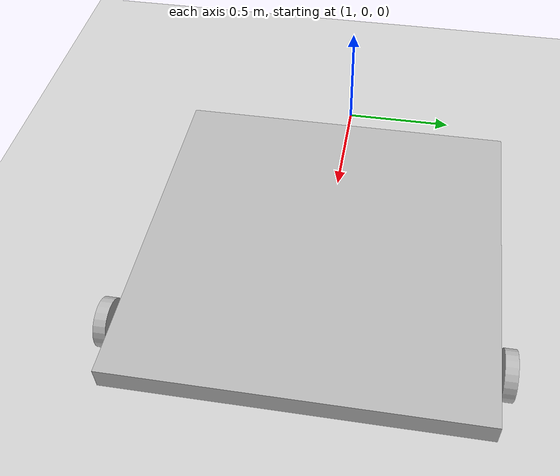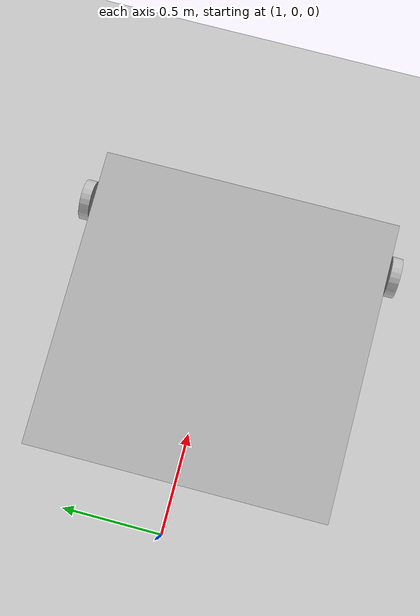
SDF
<?xml version="1.0" encoding="UTF-8"?>
<sdf version="1.9">
  <world name="platform">
    <physics type="ode">
      <max_step_size>0.004</max_step_size>
      <real_time_factor>1.0</real_time_factor>
      <real_time_update_rate>250</real_time_update_rate>
    </physics>
    <plugin name="gz::sim::systems::Physics" filename="gz-sim-physics-system"/>
    <plugin name="gz::sim::systems::UserCommands" filename="gz-sim-user-commands-system"/>
    <plugin name="gz::sim::systems::SceneBroadcaster" filename="gz-sim-scene-broadcaster-system"/>
    <plugin name="gz::sim::systems::Contact" filename="gz-sim-contact-system"/>
    <plugin name="gz::sim::systems::Imu" filename="gz-sim-imu-system"/>
    <plugin name="gz::sim::systems::AirPressure" filename="gz-sim-air-pressure-system"/>
    <plugin name="gz::sim::systems::AirSpeed" filename="gz-sim-air-speed-system"/>
    <plugin name="gz::sim::systems::ApplyLinkWrench" filename="gz-sim-apply-link-wrench-system"/>
    <plugin name="gz::sim::systems::NavSat" filename="gz-sim-navsat-system"/>
    <plugin name="gz::sim::systems::Sensors" filename="gz-sim-sensors-system">
      <render_engine>ogre2</render_engine>
    </plugin>
    <gui fullscreen="false">
      <!-- 3D scene -->
      <plugin filename="MinimalScene" name="3D View">
        <gz-gui>
          <title>3D View</title>
          <property type="bool" key="showTitleBar">false</property>
          <property type="string" key="state">docked</property>
        </gz-gui>
        <engine>ogre2</engine>
        <scene>scene</scene>
        <ambient_light>0.4 0.4 0.4</ambient_light>
        <background_color>0.8 0.8 0.8</background_color>
        <camera_pose>-6 0 6 0 0.5 0</camera_pose>
        <camera_clip>
          <near>0.25</near>
          <far>25000</far>
        </camera_clip>
      </plugin>
      <!-- Plugins that add functionality to the scene -->
      <plugin filename="EntityContextMenuPlugin" name="Entity context menu">
        <gz-gui>
          <property key="state" type="string">floating</property>
          <property key="width" type="double">5</property>
          <property key="height" type="double">5</property>
          <property key="showTitleBar" type="bool">false</property>
        </gz-gui>
      </plugin>
      <plugin filename="GzSceneManager" name="Scene Manager">
        <gz-gui>
          <property key="resizable" type="bool">false</property>
          <property key="width" type="double">5</property>
          <property key="height" type="double">5</property>
          <property key="state" type="string">floating</property>
          <property key="showTitleBar" type="bool">false</property>
        </gz-gui>
      </plugin>
      <plugin filename="InteractiveViewControl" name="Interactive view control">
        <gz-gui>
          <property key="resizable" type="bool">false</property>
          <property key="width" type="double">5</property>
          <property key="height" type="double">5</property>
          <property key="state" type="string">floating</property>
          <property key="showTitleBar" type="bool">false</property>
        </gz-gui>
      </plugin>
      <plugin filename="CameraTracking" name="Camera Tracking">
        <gz-gui>
          <property key="resizable" type="bool">false</property>
          <property key="width" type="double">5</property>
          <property key="height" type="double">5</property>
          <property key="state" type="string">floating</property>
          <property key="showTitleBar" type="bool">false</property>
        </gz-gui>
      </plugin>
      <plugin filename="MarkerManager" name="Marker manager">
        <gz-gui>
          <property key="resizable" type="bool">false</property>
          <property key="width" type="double">5</property>
          <property key="height" type="double">5</property>
          <property key="state" type="string">floating</property>
          <property key="showTitleBar" type="bool">false</property>
        </gz-gui>
      </plugin>
      <plugin filename="SelectEntities" name="Select Entities">
        <gz-gui>
          <anchors target="Select entities">
            <line own="right" target="right"/>
            <line own="top" target="top"/>
          </anchors>
          <property key="resizable" type="bool">false</property>
          <property key="width" type="double">5</property>
          <property key="height" type="double">5</property>
          <property key="state" type="string">floating</property>
          <property key="showTitleBar" type="bool">false</property>
        </gz-gui>
      </plugin>
      <plugin filename="VisualizationCapabilities" name="Visualization Capabilities">
        <gz-gui>
          <property key="resizable" type="bool">false</property>
          <property key="width" type="double">5</property>
          <property key="height" type="double">5</property>
          <property key="state" type="string">floating</property>
          <property key="showTitleBar" type="bool">false</property>
        </gz-gui>
      </plugin>
      <plugin filename="Spawn" name="Spawn Entities">
        <gz-gui>
          <anchors target="Select entities">
            <line own="right" target="right"/>
            <line own="top" target="top"/>
          </anchors>
          <property key="resizable" type="bool">false</property>
          <property key="width" type="double">5</property>
          <property key="height" type="double">5</property>
          <property key="state" type="string">floating</property>
          <property key="showTitleBar" type="bool">false</property>
        </gz-gui>
      </plugin>
      <plugin name="World control" filename="WorldControl">
        <gz-gui>
          <title>World control</title>
          <property type="bool" key="showTitleBar">0</property>
          <property type="bool" key="resizable">0</property>
          <property type="double" key="height">72</property>
          <property type="double" key="width">121</property>
          <property type="double" key="z">1</property>
          <property type="string" key="state">floating</property>
          <anchors target="3D View">
            <line own="left" target="left"/>
            <line own="bottom" target="bottom"/>
          </anchors>
        </gz-gui>
        <play_pause>1</play_pause>
        <step>1</step>
        <start_paused>1</start_paused>
      </plugin>
      <plugin name="World stats" filename="WorldStats">
        <gz-gui>
          <title>World stats</title>
          <property type="bool" key="showTitleBar">0</property>
          <property type="bool" key="resizable">0</property>
          <property type="double" key="height">110</property>
          <property type="double" key="width">290</property>
          <property type="double" key="z">1</property>
          <property type="string" key="state">floating</property>
          <anchors target="3D View">
            <line own="right" target="right"/>
            <line own="bottom" target="bottom"/>
          </anchors>
        </gz-gui>
        <sim_time>1</sim_time>
        <real_time>1</real_time>
        <real_time_factor>1</real_time_factor>
        <iterations>1</iterations>
      </plugin>
      <plugin name="Entity tree" filename="EntityTree"/>
    </gui>
    <gravity>0 0 -9.8</gravity>
    <magnetic_field>6e-06 2.3e-05 -4.2e-05</magnetic_field>
    <atmosphere type="adiabatic"/>
    <scene>
      <grid>false</grid>
      <ambient>0.4 0.4 0.4 1</ambient>
      <background>0.7 0.7 0.7 1</background>
      <shadows>true</shadows>
    </scene>
    <model name="ground_plane">
      <static>true</static>
      <link name="link">
        <collision name="collision">
          <geometry>
            <plane>
              <normal>0 0 1</normal>
              <size>1 1</size>
            </plane>
          </geometry>
          <surface>
            <friction>
              <ode/>
            </friction>
            <bounce/>
            <contact/>
          </surface>
        </collision>
        <visual name="visual">
          <geometry>
            <plane>
              <normal>0 0 1</normal>
              <size>100 100</size>
            </plane>
          </geometry>
          <material>
            <ambient>0.8 0.8 0.8 1</ambient>
            <diffuse>0.8 0.8 0.8 1</diffuse>
            <specular>0.8 0.8 0.8 1</specular>
          </material>
        </visual>
        <pose>0 0 0 0 -0 0</pose>
        <inertial>
          <pose>0 0 0 0 -0 0</pose>
          <mass>1</mass>
          <inertia>
            <ixx>1</ixx>
            <ixy>0</ixy>
            <ixz>0</ixz>
            <iyy>1</iyy>
            <iyz>0</iyz>
            <izz>1</izz>
          </inertia>
        </inertial>
        <enable_wind>false</enable_wind>
      </link>
      <pose>0 0 0 0 -0 0</pose>
      <self_collide>false</self_collide>
    </model>
    <light name="sunUTC" type="directional">
      <pose>0 0 500 0 -0 0</pose>
      <cast_shadows>true</cast_shadows>
      <intensity>1</intensity>
      <direction>0.001 0.625 -0.78</direction>
      <diffuse>0.904 0.904 0.904 1</diffuse>
      <specular>0.271 0.271 0.271 1</specular>
      <attenuation>
        <range>2000</range>
        <linear>0</linear>
        <constant>1</constant>
        <quadratic>0</quadratic>
      </attenuation>
      <spot>
        <inner_angle>0</inner_angle>
        <outer_angle>0</outer_angle>
        <falloff>0</falloff>
      </spot>
    </light>
    <spherical_coordinates>
      <surface_model>EARTH_WGS84</surface_model>
      <world_frame_orientation>ENU</world_frame_orientation>
      <latitude_deg>47.397971057728974</latitude_deg>
      <longitude_deg> 8.546163739800146</longitude_deg>
      <elevation>0</elevation>
    </spherical_coordinates>

    <include>
      <uri>model://landing_platform</uri>
    </include>
  </world>
</sdf>

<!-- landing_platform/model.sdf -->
<sdf version='1.9'>
  <model name="landing_platform">
    <static>false</static>
    <link name="base_link">
      <pose>2 0 0.1 0 0 0</pose>
      <collision name="collision">
        <geometry>
          <box>
            <size>1.5 1.5 0.1</size>
          </box>
        </geometry>
      </collision>
      <visual name="visual">
        <geometry>
          <box>
            <size>1.5 1.5 0.1</size>
          </box>
        </geometry>
        <material>
          <ambient>0.7 0.7 0.7 1</ambient>
          <diffuse>0.7 0.7 0.7 1</diffuse>
        </material>
      </visual>
      <inertial>
        <mass>10</mass>
        <inertia>
          <ixx>1.0</ixx>
          <iyy>1.0</iyy>
          <izz>1.0</izz>
          <ixy>0.0</ixy>
          <ixz>0.0</ixz>
          <iyz>0.0</iyz>
        </inertia>
      </inertial>

      <collision name='caster_collision'>
        <pose>-0.5 0 -0.05 0 0 0</pose>
        <geometry>
            <sphere>
            <radius>.05</radius>
          </sphere>
        </geometry>
        <surface>
          <friction>
            <ode>
              <mu>0</mu>
              <mu2>0</mu2>
              <slip1>1.0</slip1>
              <slip2>1.0</slip2>
            </ode>
          </friction>
        </surface>
      </collision>
      <visual name='caster_visual'>
        <pose>-0.5 0 -0.05 0 0 0</pose>
        <geometry>
          <sphere>
            <radius>.05</radius>
          </sphere>
        </geometry>
      </visual>
    </link>

    <link name="left_wheel">
        <pose>2.5 0.78 0.1 0 1.5707 1.5707</pose>
        <collision name="collision">
          <geometry>
            <cylinder>
              <radius>.1</radius>
              <length>.05</length>
            </cylinder>
          </geometry>
        </collision>
        <visual name="visual">
          <geometry>
            <cylinder>
              <radius>.1</radius>
              <length>.05</length>
            </cylinder>
          </geometry>
        </visual>
      </link>
      <link name="right_wheel">
        <pose>2.5 -0.78 0.1 0 1.5707 1.5707</pose>
        <collision name="collision">
          <geometry>
            <cylinder>
              <radius>.1</radius>
              <length>.05</length>
            </cylinder>
          </geometry>
        </collision>
        <visual name="visual">
          <geometry>
            <cylinder>
              <radius>.1</radius>
              <length>.05</length>
            </cylinder>
          </geometry>
        </visual>
      </link>

    <joint type="revolute" name="left_wheel_joint">
        <pose>2.5 0.78 0.1 0 0 0</pose>
        <child>left_wheel</child>
        <parent>base_link</parent>
        <axis>
          <xyz>0 1 0</xyz>
        </axis>
      </joint>

      <joint type="revolute" name="right_wheel_joint">
        <pose>2.5 -0.78 0.1 0 0 0</pose>
        <child>right_wheel</child>
        <parent>base_link</parent>
        <axis>
          <xyz>0 1 0</xyz>
        </axis>
      </joint>

    <plugin filename="gz-sim-diff-drive-system" name="gz::sim::systems::DiffDrive">
      <right_joint>right_wheel_joint</right_joint>
      <left_joint>left_wheel_joint</left_joint>
      <wheel_separation>1.56</wheel_separation>
      <wheel_radius>0.1</wheel_radius>
      <max_linear_acceleration>10</max_linear_acceleration>
      <odom_publish_frequency>100</odom_publish_frequency>

      <ros>
        <namespace>/landing_platform</namespace>
        <remapping>cmd_vel:=/landing_platform/cmd_vel</remapping>
        <remapping>odom:=/landing_platform/odom</remapping>
      </ros>
    </plugin>

    <plugin filename="gz-sim-joint-state-publisher-system" name="gz::sim::systems::JointStatePublisher">
        <topic>joint_states</topic>
        <joint_name>right_wheel_joint</joint_name>
        <joint_name>left_wheel_joint</joint_name>
    </plugin>

  </model>
</sdf>
